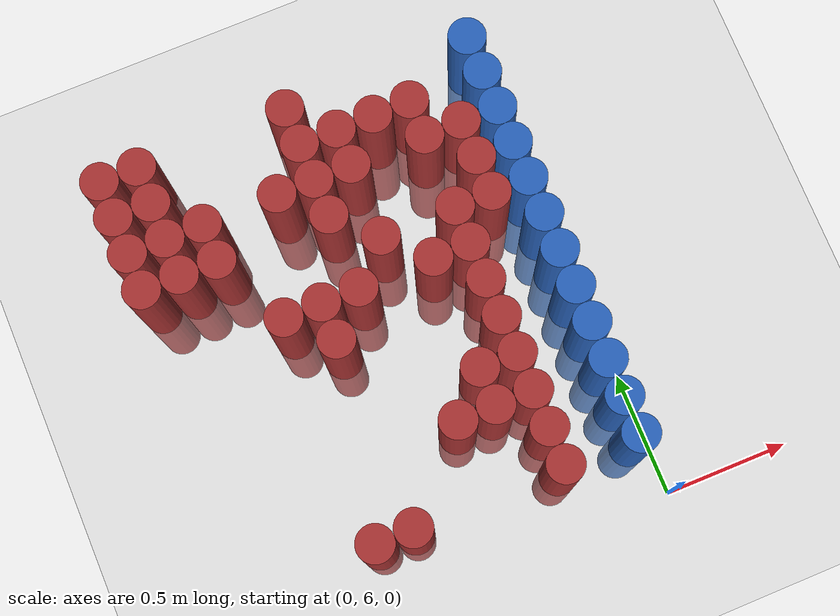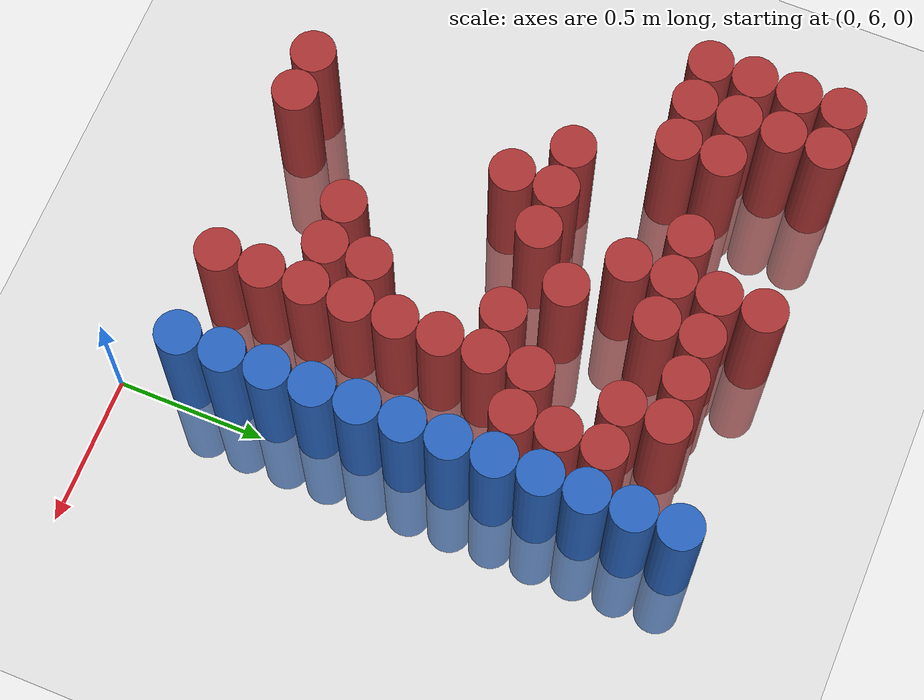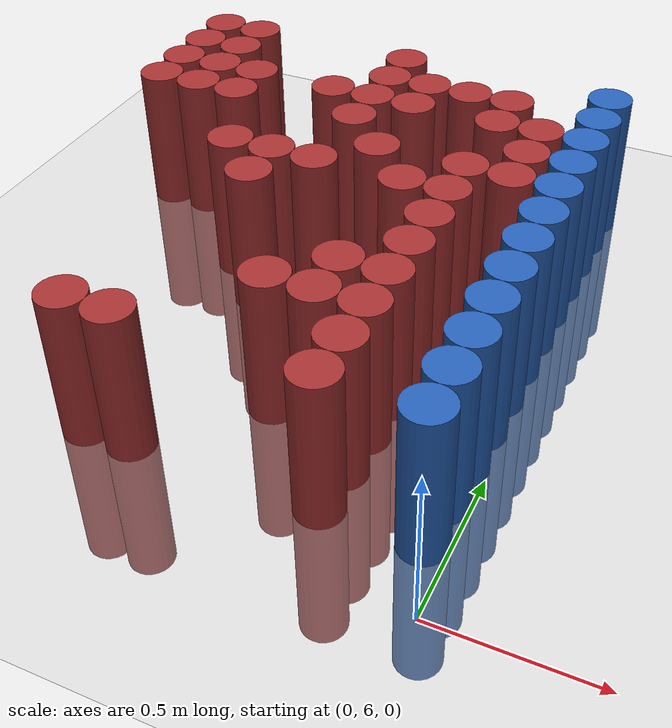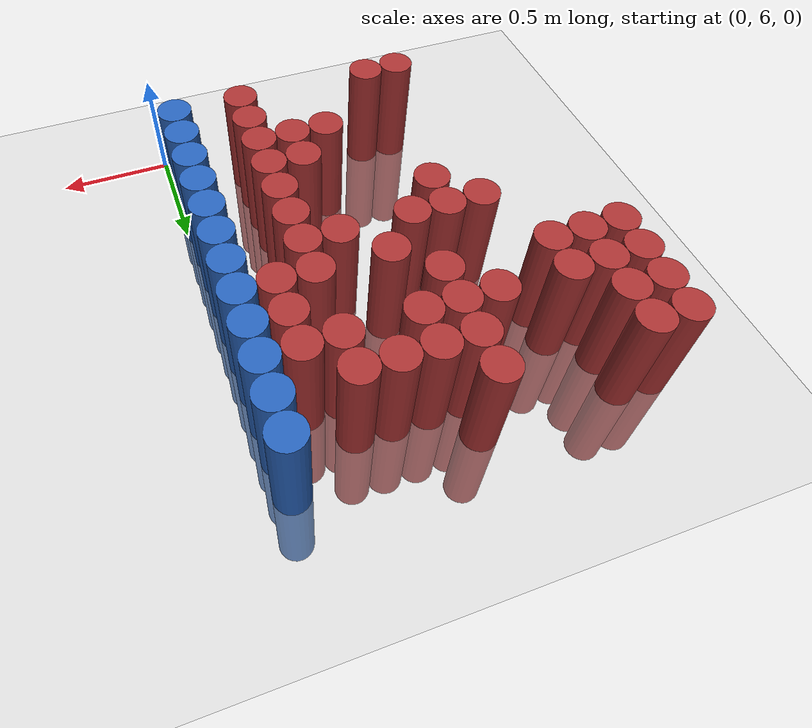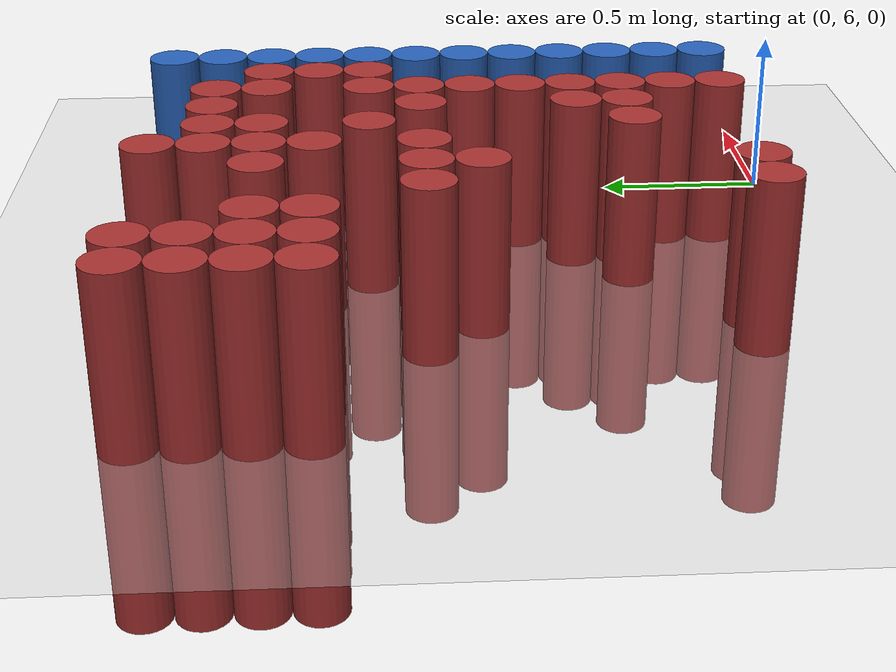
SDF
<sdf version="1.6">
 <world name="default">
  <model name="ground_plane">
   <static>1</static>
   <link name="link">
    <collision name="collision">
     <geometry><plane><normal>0 0 1</normal><size>100 100</size></plane></geometry>
     <surface><friction><ode><mu>100</mu><mu2>50</mu2></ode></friction></surface>
    </collision>
    <visual name="visual">
     <cast_shadows>0</cast_shadows>
     <geometry><plane><normal>0 0 1</normal><size>100 100</size></plane></geometry>
     <material>
      <script><uri>file://media/materials/scripts/gazebo.material</uri><name>Gazebo/Grey</name></script>
     </material>
    </visual>
   </link>
  </model>
  <model name="unit_cylinder_251">
   <static>1</static>
   <pose>-1.575000 7.425000 0.000000 0.000000 0.000000 0.000000</pose>
   <link name="link">
    <inertial>
     <mass>1</mass>
     <inertia><ixx>0.145833</ixx><ixy>0</ixy><ixz>0</ixz><iyy>0.145833</iyy><iyz>0</iyz><izz>0.125</izz></inertia>
    </inertial>
    <collision name="collision">
     <geometry><cylinder><radius>0.075000</radius><length>1</length></cylinder></geometry>
    </collision>
    <visual name="visual">
     <geometry><cylinder><radius>0.075000</radius><length>1</length></cylinder></geometry>
     <material>
      <ambient>0.648000 0.192000 0.192000 1</ambient>
      <diffuse>0.648000 0.192000 0.192000 1</diffuse>
     </material>
     <material>
      <script><name>Gazebo/Grey</name><uri>file://media/materials/scripts/gazebo.material</uri></script>
     </material>
    </visual>
   </link>
  </model>
  <model name="unit_cylinder_252">
   <static>1</static>
   <pose>-1.575000 7.575000 0.000000 0.000000 0.000000 0.000000</pose>
   <link name="link">
    <inertial>
     <mass>1</mass>
     <inertia><ixx>0.145833</ixx><ixy>0</ixy><ixz>0</ixz><iyy>0.145833</iyy><iyz>0</iyz><izz>0.125</izz></inertia>
    </inertial>
    <collision name="collision">
     <geometry><cylinder><radius>0.075000</radius><length>1</length></cylinder></geometry>
    </collision>
    <visual name="visual">
     <geometry><cylinder><radius>0.075000</radius><length>1</length></cylinder></geometry>
     <material>
      <ambient>0.648000 0.192000 0.192000 1</ambient>
      <diffuse>0.648000 0.192000 0.192000 1</diffuse>
     </material>
     <material>
      <script><name>Gazebo/Grey</name><uri>file://media/materials/scripts/gazebo.material</uri></script>
     </material>
    </visual>
   </link>
  </model>
  <model name="unit_cylinder_253">
   <static>1</static>
   <pose>-1.575000 7.725000 0.000000 0.000000 0.000000 0.000000</pose>
   <link name="link">
    <inertial>
     <mass>1</mass>
     <inertia><ixx>0.145833</ixx><ixy>0</ixy><ixz>0</ixz><iyy>0.145833</iyy><iyz>0</iyz><izz>0.125</izz></inertia>
    </inertial>
    <collision name="collision">
     <geometry><cylinder><radius>0.075000</radius><length>1</length></cylinder></geometry>
    </collision>
    <visual name="visual">
     <geometry><cylinder><radius>0.075000</radius><length>1</length></cylinder></geometry>
     <material>
      <ambient>0.648000 0.192000 0.192000 1</ambient>
      <diffuse>0.648000 0.192000 0.192000 1</diffuse>
     </material>
     <material>
      <script><name>Gazebo/Grey</name><uri>file://media/materials/scripts/gazebo.material</uri></script>
     </material>
    </visual>
   </link>
  </model>
  <model name="unit_cylinder_254">
   <static>1</static>
   <pose>-1.575000 7.875000 0.000000 0.000000 0.000000 0.000000</pose>
   <link name="link">
    <inertial>
     <mass>1</mass>
     <inertia><ixx>0.145833</ixx><ixy>0</ixy><ixz>0</ixz><iyy>0.145833</iyy><iyz>0</iyz><izz>0.125</izz></inertia>
    </inertial>
    <collision name="collision">
     <geometry><cylinder><radius>0.075000</radius><length>1</length></cylinder></geometry>
    </collision>
    <visual name="visual">
     <geometry><cylinder><radius>0.075000</radius><length>1</length></cylinder></geometry>
     <material>
      <ambient>0.648000 0.192000 0.192000 1</ambient>
      <diffuse>0.648000 0.192000 0.192000 1</diffuse>
     </material>
     <material>
      <script><name>Gazebo/Grey</name><uri>file://media/materials/scripts/gazebo.material</uri></script>
     </material>
    </visual>
   </link>
  </model>
  <model name="unit_cylinder_260">
   <static>1</static>
   <pose>-1.425000 7.425000 0.000000 0.000000 0.000000 0.000000</pose>
   <link name="link">
    <inertial>
     <mass>1</mass>
     <inertia><ixx>0.145833</ixx><ixy>0</ixy><ixz>0</ixz><iyy>0.145833</iyy><iyz>0</iyz><izz>0.125</izz></inertia>
    </inertial>
    <collision name="collision">
     <geometry><cylinder><radius>0.075000</radius><length>1</length></cylinder></geometry>
    </collision>
    <visual name="visual">
     <geometry><cylinder><radius>0.075000</radius><length>1</length></cylinder></geometry>
     <material>
      <ambient>0.648000 0.192000 0.192000 1</ambient>
      <diffuse>0.648000 0.192000 0.192000 1</diffuse>
     </material>
     <material>
      <script><name>Gazebo/Grey</name><uri>file://media/materials/scripts/gazebo.material</uri></script>
     </material>
    </visual>
   </link>
  </model>
  <model name="unit_cylinder_261">
   <static>1</static>
   <pose>-1.425000 7.575000 0.000000 0.000000 0.000000 0.000000</pose>
   <link name="link">
    <inertial>
     <mass>1</mass>
     <inertia><ixx>0.145833</ixx><ixy>0</ixy><ixz>0</ixz><iyy>0.145833</iyy><iyz>0</iyz><izz>0.125</izz></inertia>
    </inertial>
    <collision name="collision">
     <geometry><cylinder><radius>0.075000</radius><length>1</length></cylinder></geometry>
    </collision>
    <visual name="visual">
     <geometry><cylinder><radius>0.075000</radius><length>1</length></cylinder></geometry>
     <material>
      <ambient>0.648000 0.192000 0.192000 1</ambient>
      <diffuse>0.648000 0.192000 0.192000 1</diffuse>
     </material>
     <material>
      <script><name>Gazebo/Grey</name><uri>file://media/materials/scripts/gazebo.material</uri></script>
     </material>
    </visual>
   </link>
  </model>
  <model name="unit_cylinder_262">
   <static>1</static>
   <pose>-1.425000 7.725000 0.000000 0.000000 0.000000 0.000000</pose>
   <link name="link">
    <inertial>
     <mass>1</mass>
     <inertia><ixx>0.145833</ixx><ixy>0</ixy><ixz>0</ixz><iyy>0.145833</iyy><iyz>0</iyz><izz>0.125</izz></inertia>
    </inertial>
    <collision name="collision">
     <geometry><cylinder><radius>0.075000</radius><length>1</length></cylinder></geometry>
    </collision>
    <visual name="visual">
     <geometry><cylinder><radius>0.075000</radius><length>1</length></cylinder></geometry>
     <material>
      <ambient>0.648000 0.192000 0.192000 1</ambient>
      <diffuse>0.648000 0.192000 0.192000 1</diffuse>
     </material>
     <material>
      <script><name>Gazebo/Grey</name><uri>file://media/materials/scripts/gazebo.material</uri></script>
     </material>
    </visual>
   </link>
  </model>
  <model name="unit_cylinder_263">
   <static>1</static>
   <pose>-1.425000 7.875000 0.000000 0.000000 0.000000 0.000000</pose>
   <link name="link">
    <inertial>
     <mass>1</mass>
     <inertia><ixx>0.145833</ixx><ixy>0</ixy><ixz>0</ixz><iyy>0.145833</iyy><iyz>0</iyz><izz>0.125</izz></inertia>
    </inertial>
    <collision name="collision">
     <geometry><cylinder><radius>0.075000</radius><length>1</length></cylinder></geometry>
    </collision>
    <visual name="visual">
     <geometry><cylinder><radius>0.075000</radius><length>1</length></cylinder></geometry>
     <material>
      <ambient>0.648000 0.192000 0.192000 1</ambient>
      <diffuse>0.648000 0.192000 0.192000 1</diffuse>
     </material>
     <material>
      <script><name>Gazebo/Grey</name><uri>file://media/materials/scripts/gazebo.material</uri></script>
     </material>
    </visual>
   </link>
  </model>
  <model name="unit_cylinder_271">
   <static>1</static>
   <pose>-1.275000 7.425000 0.000000 0.000000 0.000000 0.000000</pose>
   <link name="link">
    <inertial>
     <mass>1</mass>
     <inertia><ixx>0.145833</ixx><ixy>0</ixy><ixz>0</ixz><iyy>0.145833</iyy><iyz>0</iyz><izz>0.125</izz></inertia>
    </inertial>
    <collision name="collision">
     <geometry><cylinder><radius>0.075000</radius><length>1</length></cylinder></geometry>
    </collision>
    <visual name="visual">
     <geometry><cylinder><radius>0.075000</radius><length>1</length></cylinder></geometry>
     <material>
      <ambient>0.648000 0.192000 0.192000 1</ambient>
      <diffuse>0.648000 0.192000 0.192000 1</diffuse>
     </material>
     <material>
      <script><name>Gazebo/Grey</name><uri>file://media/materials/scripts/gazebo.material</uri></script>
     </material>
    </visual>
   </link>
  </model>
  <model name="unit_cylinder_272">
   <static>1</static>
   <pose>-1.275000 7.575000 0.000000 0.000000 0.000000 0.000000</pose>
   <link name="link">
    <inertial>
     <mass>1</mass>
     <inertia><ixx>0.145833</ixx><ixy>0</ixy><ixz>0</ixz><iyy>0.145833</iyy><iyz>0</iyz><izz>0.125</izz></inertia>
    </inertial>
    <collision name="collision">
     <geometry><cylinder><radius>0.075000</radius><length>1</length></cylinder></geometry>
    </collision>
    <visual name="visual">
     <geometry><cylinder><radius>0.075000</radius><length>1</length></cylinder></geometry>
     <material>
      <ambient>0.648000 0.192000 0.192000 1</ambient>
      <diffuse>0.648000 0.192000 0.192000 1</diffuse>
     </material>
     <material>
      <script><name>Gazebo/Grey</name><uri>file://media/materials/scripts/gazebo.material</uri></script>
     </material>
    </visual>
   </link>
  </model>
  <model name="unit_cylinder_280">
   <static>1</static>
   <pose>-1.125000 6.225000 0.000000 0.000000 0.000000 0.000000</pose>
   <link name="link">
    <inertial>
     <mass>1</mass>
     <inertia><ixx>0.145833</ixx><ixy>0</ixy><ixz>0</ixz><iyy>0.145833</iyy><iyz>0</iyz><izz>0.125</izz></inertia>
    </inertial>
    <collision name="collision">
     <geometry><cylinder><radius>0.075000</radius><length>1</length></cylinder></geometry>
    </collision>
    <visual name="visual">
     <geometry><cylinder><radius>0.075000</radius><length>1</length></cylinder></geometry>
     <material>
      <ambient>0.648000 0.192000 0.192000 1</ambient>
      <diffuse>0.648000 0.192000 0.192000 1</diffuse>
     </material>
     <material>
      <script><name>Gazebo/Grey</name><uri>file://media/materials/scripts/gazebo.material</uri></script>
     </material>
    </visual>
   </link>
  </model>
  <model name="unit_cylinder_281">
   <static>1</static>
   <pose>-1.125000 7.125000 0.000000 0.000000 0.000000 0.000000</pose>
   <link name="link">
    <inertial>
     <mass>1</mass>
     <inertia><ixx>0.145833</ixx><ixy>0</ixy><ixz>0</ixz><iyy>0.145833</iyy><iyz>0</iyz><izz>0.125</izz></inertia>
    </inertial>
    <collision name="collision">
     <geometry><cylinder><radius>0.075000</radius><length>1</length></cylinder></geometry>
    </collision>
    <visual name="visual">
     <geometry><cylinder><radius>0.075000</radius><length>1</length></cylinder></geometry>
     <material>
      <ambient>0.648000 0.192000 0.192000 1</ambient>
      <diffuse>0.648000 0.192000 0.192000 1</diffuse>
     </material>
     <material>
      <script><name>Gazebo/Grey</name><uri>file://media/materials/scripts/gazebo.material</uri></script>
     </material>
    </visual>
   </link>
  </model>
  <model name="unit_cylinder_286">
   <static>1</static>
   <pose>-0.975000 6.225000 0.000000 0.000000 0.000000 0.000000</pose>
   <link name="link">
    <inertial>
     <mass>1</mass>
     <inertia><ixx>0.145833</ixx><ixy>0</ixy><ixz>0</ixz><iyy>0.145833</iyy><iyz>0</iyz><izz>0.125</izz></inertia>
    </inertial>
    <collision name="collision">
     <geometry><cylinder><radius>0.075000</radius><length>1</length></cylinder></geometry>
    </collision>
    <visual name="visual">
     <geometry><cylinder><radius>0.075000</radius><length>1</length></cylinder></geometry>
     <material>
      <ambient>0.648000 0.192000 0.192000 1</ambient>
      <diffuse>0.648000 0.192000 0.192000 1</diffuse>
     </material>
     <material>
      <script><name>Gazebo/Grey</name><uri>file://media/materials/scripts/gazebo.material</uri></script>
     </material>
    </visual>
   </link>
  </model>
  <model name="unit_cylinder_287">
   <static>1</static>
   <pose>-0.975000 6.975000 0.000000 0.000000 0.000000 0.000000</pose>
   <link name="link">
    <inertial>
     <mass>1</mass>
     <inertia><ixx>0.145833</ixx><ixy>0</ixy><ixz>0</ixz><iyy>0.145833</iyy><iyz>0</iyz><izz>0.125</izz></inertia>
    </inertial>
    <collision name="collision">
     <geometry><cylinder><radius>0.075000</radius><length>1</length></cylinder></geometry>
    </collision>
    <visual name="visual">
     <geometry><cylinder><radius>0.075000</radius><length>1</length></cylinder></geometry>
     <material>
      <ambient>0.648000 0.192000 0.192000 1</ambient>
      <diffuse>0.648000 0.192000 0.192000 1</diffuse>
     </material>
     <material>
      <script><name>Gazebo/Grey</name><uri>file://media/materials/scripts/gazebo.material</uri></script>
     </material>
    </visual>
   </link>
  </model>
  <model name="unit_cylinder_288">
   <static>1</static>
   <pose>-0.975000 7.125000 0.000000 0.000000 0.000000 0.000000</pose>
   <link name="link">
    <inertial>
     <mass>1</mass>
     <inertia><ixx>0.145833</ixx><ixy>0</ixy><ixz>0</ixz><iyy>0.145833</iyy><iyz>0</iyz><izz>0.125</izz></inertia>
    </inertial>
    <collision name="collision">
     <geometry><cylinder><radius>0.075000</radius><length>1</length></cylinder></geometry>
    </collision>
    <visual name="visual">
     <geometry><cylinder><radius>0.075000</radius><length>1</length></cylinder></geometry>
     <material>
      <ambient>0.648000 0.192000 0.192000 1</ambient>
      <diffuse>0.648000 0.192000 0.192000 1</diffuse>
     </material>
     <material>
      <script><name>Gazebo/Grey</name><uri>file://media/materials/scripts/gazebo.material</uri></script>
     </material>
    </visual>
   </link>
  </model>
  <model name="unit_cylinder_289">
   <static>1</static>
   <pose>-0.975000 7.575000 0.000000 0.000000 0.000000 0.000000</pose>
   <link name="link">
    <inertial>
     <mass>1</mass>
     <inertia><ixx>0.145833</ixx><ixy>0</ixy><ixz>0</ixz><iyy>0.145833</iyy><iyz>0</iyz><izz>0.125</izz></inertia>
    </inertial>
    <collision name="collision">
     <geometry><cylinder><radius>0.075000</radius><length>1</length></cylinder></geometry>
    </collision>
    <visual name="visual">
     <geometry><cylinder><radius>0.075000</radius><length>1</length></cylinder></geometry>
     <material>
      <ambient>0.648000 0.192000 0.192000 1</ambient>
      <diffuse>0.648000 0.192000 0.192000 1</diffuse>
     </material>
     <material>
      <script><name>Gazebo/Grey</name><uri>file://media/materials/scripts/gazebo.material</uri></script>
     </material>
    </visual>
   </link>
  </model>
  <model name="unit_cylinder_294">
   <static>1</static>
   <pose>-0.825000 7.125000 0.000000 0.000000 0.000000 0.000000</pose>
   <link name="link">
    <inertial>
     <mass>1</mass>
     <inertia><ixx>0.145833</ixx><ixy>0</ixy><ixz>0</ixz><iyy>0.145833</iyy><iyz>0</iyz><izz>0.125</izz></inertia>
    </inertial>
    <collision name="collision">
     <geometry><cylinder><radius>0.075000</radius><length>1</length></cylinder></geometry>
    </collision>
    <visual name="visual">
     <geometry><cylinder><radius>0.075000</radius><length>1</length></cylinder></geometry>
     <material>
      <ambient>0.648000 0.192000 0.192000 1</ambient>
      <diffuse>0.648000 0.192000 0.192000 1</diffuse>
     </material>
     <material>
      <script><name>Gazebo/Grey</name><uri>file://media/materials/scripts/gazebo.material</uri></script>
     </material>
    </visual>
   </link>
  </model>
  <model name="unit_cylinder_295">
   <static>1</static>
   <pose>-0.825000 7.425000 0.000000 0.000000 0.000000 0.000000</pose>
   <link name="link">
    <inertial>
     <mass>1</mass>
     <inertia><ixx>0.145833</ixx><ixy>0</ixy><ixz>0</ixz><iyy>0.145833</iyy><iyz>0</iyz><izz>0.125</izz></inertia>
    </inertial>
    <collision name="collision">
     <geometry><cylinder><radius>0.075000</radius><length>1</length></cylinder></geometry>
    </collision>
    <visual name="visual">
     <geometry><cylinder><radius>0.075000</radius><length>1</length></cylinder></geometry>
     <material>
      <ambient>0.648000 0.192000 0.192000 1</ambient>
      <diffuse>0.648000 0.192000 0.192000 1</diffuse>
     </material>
     <material>
      <script><name>Gazebo/Grey</name><uri>file://media/materials/scripts/gazebo.material</uri></script>
     </material>
    </visual>
   </link>
  </model>
  <model name="unit_cylinder_296">
   <static>1</static>
   <pose>-0.825000 7.575000 0.000000 0.000000 0.000000 0.000000</pose>
   <link name="link">
    <inertial>
     <mass>1</mass>
     <inertia><ixx>0.145833</ixx><ixy>0</ixy><ixz>0</ixz><iyy>0.145833</iyy><iyz>0</iyz><izz>0.125</izz></inertia>
    </inertial>
    <collision name="collision">
     <geometry><cylinder><radius>0.075000</radius><length>1</length></cylinder></geometry>
    </collision>
    <visual name="visual">
     <geometry><cylinder><radius>0.075000</radius><length>1</length></cylinder></geometry>
     <material>
      <ambient>0.648000 0.192000 0.192000 1</ambient>
      <diffuse>0.648000 0.192000 0.192000 1</diffuse>
     </material>
     <material>
      <script><name>Gazebo/Grey</name><uri>file://media/materials/scripts/gazebo.material</uri></script>
     </material>
    </visual>
   </link>
  </model>
  <model name="unit_cylinder_297">
   <static>1</static>
   <pose>-0.825000 7.725000 0.000000 0.000000 0.000000 0.000000</pose>
   <link name="link">
    <inertial>
     <mass>1</mass>
     <inertia><ixx>0.145833</ixx><ixy>0</ixy><ixz>0</ixz><iyy>0.145833</iyy><iyz>0</iyz><izz>0.125</izz></inertia>
    </inertial>
    <collision name="collision">
     <geometry><cylinder><radius>0.075000</radius><length>1</length></cylinder></geometry>
    </collision>
    <visual name="visual">
     <geometry><cylinder><radius>0.075000</radius><length>1</length></cylinder></geometry>
     <material>
      <ambient>0.648000 0.192000 0.192000 1</ambient>
      <diffuse>0.648000 0.192000 0.192000 1</diffuse>
     </material>
     <material>
      <script><name>Gazebo/Grey</name><uri>file://media/materials/scripts/gazebo.material</uri></script>
     </material>
    </visual>
   </link>
  </model>
  <model name="unit_cylinder_298">
   <static>1</static>
   <pose>-0.825000 7.875000 0.000000 0.000000 0.000000 0.000000</pose>
   <link name="link">
    <inertial>
     <mass>1</mass>
     <inertia><ixx>0.145833</ixx><ixy>0</ixy><ixz>0</ixz><iyy>0.145833</iyy><iyz>0</iyz><izz>0.125</izz></inertia>
    </inertial>
    <collision name="collision">
     <geometry><cylinder><radius>0.075000</radius><length>1</length></cylinder></geometry>
    </collision>
    <visual name="visual">
     <geometry><cylinder><radius>0.075000</radius><length>1</length></cylinder></geometry>
     <material>
      <ambient>0.648000 0.192000 0.192000 1</ambient>
      <diffuse>0.648000 0.192000 0.192000 1</diffuse>
     </material>
     <material>
      <script><name>Gazebo/Grey</name><uri>file://media/materials/scripts/gazebo.material</uri></script>
     </material>
    </visual>
   </link>
  </model>
  <model name="unit_cylinder_303">
   <static>1</static>
   <pose>-0.675000 6.525000 0.000000 0.000000 0.000000 0.000000</pose>
   <link name="link">
    <inertial>
     <mass>1</mass>
     <inertia><ixx>0.145833</ixx><ixy>0</ixy><ixz>0</ixz><iyy>0.145833</iyy><iyz>0</iyz><izz>0.125</izz></inertia>
    </inertial>
    <collision name="collision">
     <geometry><cylinder><radius>0.075000</radius><length>1</length></cylinder></geometry>
    </collision>
    <visual name="visual">
     <geometry><cylinder><radius>0.075000</radius><length>1</length></cylinder></geometry>
     <material>
      <ambient>0.648000 0.192000 0.192000 1</ambient>
      <diffuse>0.648000 0.192000 0.192000 1</diffuse>
     </material>
     <material>
      <script><name>Gazebo/Grey</name><uri>file://media/materials/scripts/gazebo.material</uri></script>
     </material>
    </visual>
   </link>
  </model>
  <model name="unit_cylinder_304">
   <static>1</static>
   <pose>-0.675000 7.275000 0.000000 0.000000 0.000000 0.000000</pose>
   <link name="link">
    <inertial>
     <mass>1</mass>
     <inertia><ixx>0.145833</ixx><ixy>0</ixy><ixz>0</ixz><iyy>0.145833</iyy><iyz>0</iyz><izz>0.125</izz></inertia>
    </inertial>
    <collision name="collision">
     <geometry><cylinder><radius>0.075000</radius><length>1</length></cylinder></geometry>
    </collision>
    <visual name="visual">
     <geometry><cylinder><radius>0.075000</radius><length>1</length></cylinder></geometry>
     <material>
      <ambient>0.648000 0.192000 0.192000 1</ambient>
      <diffuse>0.648000 0.192000 0.192000 1</diffuse>
     </material>
     <material>
      <script><name>Gazebo/Grey</name><uri>file://media/materials/scripts/gazebo.material</uri></script>
     </material>
    </visual>
   </link>
  </model>
  <model name="unit_cylinder_305">
   <static>1</static>
   <pose>-0.675000 7.575000 0.000000 0.000000 0.000000 0.000000</pose>
   <link name="link">
    <inertial>
     <mass>1</mass>
     <inertia><ixx>0.145833</ixx><ixy>0</ixy><ixz>0</ixz><iyy>0.145833</iyy><iyz>0</iyz><izz>0.125</izz></inertia>
    </inertial>
    <collision name="collision">
     <geometry><cylinder><radius>0.075000</radius><length>1</length></cylinder></geometry>
    </collision>
    <visual name="visual">
     <geometry><cylinder><radius>0.075000</radius><length>1</length></cylinder></geometry>
     <material>
      <ambient>0.648000 0.192000 0.192000 1</ambient>
      <diffuse>0.648000 0.192000 0.192000 1</diffuse>
     </material>
     <material>
      <script><name>Gazebo/Grey</name><uri>file://media/materials/scripts/gazebo.material</uri></script>
     </material>
    </visual>
   </link>
  </model>
  <model name="unit_cylinder_306">
   <static>1</static>
   <pose>-0.675000 7.725000 0.000000 0.000000 0.000000 0.000000</pose>
   <link name="link">
    <inertial>
     <mass>1</mass>
     <inertia><ixx>0.145833</ixx><ixy>0</ixy><ixz>0</ixz><iyy>0.145833</iyy><iyz>0</iyz><izz>0.125</izz></inertia>
    </inertial>
    <collision name="collision">
     <geometry><cylinder><radius>0.075000</radius><length>1</length></cylinder></geometry>
    </collision>
    <visual name="visual">
     <geometry><cylinder><radius>0.075000</radius><length>1</length></cylinder></geometry>
     <material>
      <ambient>0.648000 0.192000 0.192000 1</ambient>
      <diffuse>0.648000 0.192000 0.192000 1</diffuse>
     </material>
     <material>
      <script><name>Gazebo/Grey</name><uri>file://media/materials/scripts/gazebo.material</uri></script>
     </material>
    </visual>
   </link>
  </model>
  <model name="unit_cylinder_310">
   <static>1</static>
   <pose>-0.525000 6.525000 0.000000 0.000000 0.000000 0.000000</pose>
   <link name="link">
    <inertial>
     <mass>1</mass>
     <inertia><ixx>0.145833</ixx><ixy>0</ixy><ixz>0</ixz><iyy>0.145833</iyy><iyz>0</iyz><izz>0.125</izz></inertia>
    </inertial>
    <collision name="collision">
     <geometry><cylinder><radius>0.075000</radius><length>1</length></cylinder></geometry>
    </collision>
    <visual name="visual">
     <geometry><cylinder><radius>0.075000</radius><length>1</length></cylinder></geometry>
     <material>
      <ambient>0.648000 0.192000 0.192000 1</ambient>
      <diffuse>0.648000 0.192000 0.192000 1</diffuse>
     </material>
     <material>
      <script><name>Gazebo/Grey</name><uri>file://media/materials/scripts/gazebo.material</uri></script>
     </material>
    </visual>
   </link>
  </model>
  <model name="unit_cylinder_311">
   <static>1</static>
   <pose>-0.525000 6.675000 0.000000 0.000000 0.000000 0.000000</pose>
   <link name="link">
    <inertial>
     <mass>1</mass>
     <inertia><ixx>0.145833</ixx><ixy>0</ixy><ixz>0</ixz><iyy>0.145833</iyy><iyz>0</iyz><izz>0.125</izz></inertia>
    </inertial>
    <collision name="collision">
     <geometry><cylinder><radius>0.075000</radius><length>1</length></cylinder></geometry>
    </collision>
    <visual name="visual">
     <geometry><cylinder><radius>0.075000</radius><length>1</length></cylinder></geometry>
     <material>
      <ambient>0.648000 0.192000 0.192000 1</ambient>
      <diffuse>0.648000 0.192000 0.192000 1</diffuse>
     </material>
     <material>
      <script><name>Gazebo/Grey</name><uri>file://media/materials/scripts/gazebo.material</uri></script>
     </material>
    </visual>
   </link>
  </model>
  <model name="unit_cylinder_312">
   <static>1</static>
   <pose>-0.525000 7.125000 0.000000 0.000000 0.000000 0.000000</pose>
   <link name="link">
    <inertial>
     <mass>1</mass>
     <inertia><ixx>0.145833</ixx><ixy>0</ixy><ixz>0</ixz><iyy>0.145833</iyy><iyz>0</iyz><izz>0.125</izz></inertia>
    </inertial>
    <collision name="collision">
     <geometry><cylinder><radius>0.075000</radius><length>1</length></cylinder></geometry>
    </collision>
    <visual name="visual">
     <geometry><cylinder><radius>0.075000</radius><length>1</length></cylinder></geometry>
     <material>
      <ambient>0.648000 0.192000 0.192000 1</ambient>
      <diffuse>0.648000 0.192000 0.192000 1</diffuse>
     </material>
     <material>
      <script><name>Gazebo/Grey</name><uri>file://media/materials/scripts/gazebo.material</uri></script>
     </material>
    </visual>
   </link>
  </model>
  <model name="unit_cylinder_313">
   <static>1</static>
   <pose>-0.525000 7.725000 0.000000 0.000000 0.000000 0.000000</pose>
   <link name="link">
    <inertial>
     <mass>1</mass>
     <inertia><ixx>0.145833</ixx><ixy>0</ixy><ixz>0</ixz><iyy>0.145833</iyy><iyz>0</iyz><izz>0.125</izz></inertia>
    </inertial>
    <collision name="collision">
     <geometry><cylinder><radius>0.075000</radius><length>1</length></cylinder></geometry>
    </collision>
    <visual name="visual">
     <geometry><cylinder><radius>0.075000</radius><length>1</length></cylinder></geometry>
     <material>
      <ambient>0.648000 0.192000 0.192000 1</ambient>
      <diffuse>0.648000 0.192000 0.192000 1</diffuse>
     </material>
     <material>
      <script><name>Gazebo/Grey</name><uri>file://media/materials/scripts/gazebo.material</uri></script>
     </material>
    </visual>
   </link>
  </model>
  <model name="unit_cylinder_320">
   <static>1</static>
   <pose>-0.375000 6.225000 0.000000 0.000000 0.000000 0.000000</pose>
   <link name="link">
    <inertial>
     <mass>1</mass>
     <inertia><ixx>0.145833</ixx><ixy>0</ixy><ixz>0</ixz><iyy>0.145833</iyy><iyz>0</iyz><izz>0.125</izz></inertia>
    </inertial>
    <collision name="collision">
     <geometry><cylinder><radius>0.075000</radius><length>1</length></cylinder></geometry>
    </collision>
    <visual name="visual">
     <geometry><cylinder><radius>0.075000</radius><length>1</length></cylinder></geometry>
     <material>
      <ambient>0.648000 0.192000 0.192000 1</ambient>
      <diffuse>0.648000 0.192000 0.192000 1</diffuse>
     </material>
     <material>
      <script><name>Gazebo/Grey</name><uri>file://media/materials/scripts/gazebo.material</uri></script>
     </material>
    </visual>
   </link>
  </model>
  <model name="unit_cylinder_321">
   <static>1</static>
   <pose>-0.375000 6.375000 0.000000 0.000000 0.000000 0.000000</pose>
   <link name="link">
    <inertial>
     <mass>1</mass>
     <inertia><ixx>0.145833</ixx><ixy>0</ixy><ixz>0</ixz><iyy>0.145833</iyy><iyz>0</iyz><izz>0.125</izz></inertia>
    </inertial>
    <collision name="collision">
     <geometry><cylinder><radius>0.075000</radius><length>1</length></cylinder></geometry>
    </collision>
    <visual name="visual">
     <geometry><cylinder><radius>0.075000</radius><length>1</length></cylinder></geometry>
     <material>
      <ambient>0.648000 0.192000 0.192000 1</ambient>
      <diffuse>0.648000 0.192000 0.192000 1</diffuse>
     </material>
     <material>
      <script><name>Gazebo/Grey</name><uri>file://media/materials/scripts/gazebo.material</uri></script>
     </material>
    </visual>
   </link>
  </model>
  <model name="unit_cylinder_322">
   <static>1</static>
   <pose>-0.375000 6.525000 0.000000 0.000000 0.000000 0.000000</pose>
   <link name="link">
    <inertial>
     <mass>1</mass>
     <inertia><ixx>0.145833</ixx><ixy>0</ixy><ixz>0</ixz><iyy>0.145833</iyy><iyz>0</iyz><izz>0.125</izz></inertia>
    </inertial>
    <collision name="collision">
     <geometry><cylinder><radius>0.075000</radius><length>1</length></cylinder></geometry>
    </collision>
    <visual name="visual">
     <geometry><cylinder><radius>0.075000</radius><length>1</length></cylinder></geometry>
     <material>
      <ambient>0.648000 0.192000 0.192000 1</ambient>
      <diffuse>0.648000 0.192000 0.192000 1</diffuse>
     </material>
     <material>
      <script><name>Gazebo/Grey</name><uri>file://media/materials/scripts/gazebo.material</uri></script>
     </material>
    </visual>
   </link>
  </model>
  <model name="unit_cylinder_323">
   <static>1</static>
   <pose>-0.375000 6.675000 0.000000 0.000000 0.000000 0.000000</pose>
   <link name="link">
    <inertial>
     <mass>1</mass>
     <inertia><ixx>0.145833</ixx><ixy>0</ixy><ixz>0</ixz><iyy>0.145833</iyy><iyz>0</iyz><izz>0.125</izz></inertia>
    </inertial>
    <collision name="collision">
     <geometry><cylinder><radius>0.075000</radius><length>1</length></cylinder></geometry>
    </collision>
    <visual name="visual">
     <geometry><cylinder><radius>0.075000</radius><length>1</length></cylinder></geometry>
     <material>
      <ambient>0.648000 0.192000 0.192000 1</ambient>
      <diffuse>0.648000 0.192000 0.192000 1</diffuse>
     </material>
     <material>
      <script><name>Gazebo/Grey</name><uri>file://media/materials/scripts/gazebo.material</uri></script>
     </material>
    </visual>
   </link>
  </model>
  <model name="unit_cylinder_324">
   <static>1</static>
   <pose>-0.375000 6.825000 0.000000 0.000000 0.000000 0.000000</pose>
   <link name="link">
    <inertial>
     <mass>1</mass>
     <inertia><ixx>0.145833</ixx><ixy>0</ixy><ixz>0</ixz><iyy>0.145833</iyy><iyz>0</iyz><izz>0.125</izz></inertia>
    </inertial>
    <collision name="collision">
     <geometry><cylinder><radius>0.075000</radius><length>1</length></cylinder></geometry>
    </collision>
    <visual name="visual">
     <geometry><cylinder><radius>0.075000</radius><length>1</length></cylinder></geometry>
     <material>
      <ambient>0.648000 0.192000 0.192000 1</ambient>
      <diffuse>0.648000 0.192000 0.192000 1</diffuse>
     </material>
     <material>
      <script><name>Gazebo/Grey</name><uri>file://media/materials/scripts/gazebo.material</uri></script>
     </material>
    </visual>
   </link>
  </model>
  <model name="unit_cylinder_325">
   <static>1</static>
   <pose>-0.375000 6.975000 0.000000 0.000000 0.000000 0.000000</pose>
   <link name="link">
    <inertial>
     <mass>1</mass>
     <inertia><ixx>0.145833</ixx><ixy>0</ixy><ixz>0</ixz><iyy>0.145833</iyy><iyz>0</iyz><izz>0.125</izz></inertia>
    </inertial>
    <collision name="collision">
     <geometry><cylinder><radius>0.075000</radius><length>1</length></cylinder></geometry>
    </collision>
    <visual name="visual">
     <geometry><cylinder><radius>0.075000</radius><length>1</length></cylinder></geometry>
     <material>
      <ambient>0.648000 0.192000 0.192000 1</ambient>
      <diffuse>0.648000 0.192000 0.192000 1</diffuse>
     </material>
     <material>
      <script><name>Gazebo/Grey</name><uri>file://media/materials/scripts/gazebo.material</uri></script>
     </material>
    </visual>
   </link>
  </model>
  <model name="unit_cylinder_326">
   <static>1</static>
   <pose>-0.375000 7.125000 0.000000 0.000000 0.000000 0.000000</pose>
   <link name="link">
    <inertial>
     <mass>1</mass>
     <inertia><ixx>0.145833</ixx><ixy>0</ixy><ixz>0</ixz><iyy>0.145833</iyy><iyz>0</iyz><izz>0.125</izz></inertia>
    </inertial>
    <collision name="collision">
     <geometry><cylinder><radius>0.075000</radius><length>1</length></cylinder></geometry>
    </collision>
    <visual name="visual">
     <geometry><cylinder><radius>0.075000</radius><length>1</length></cylinder></geometry>
     <material>
      <ambient>0.648000 0.192000 0.192000 1</ambient>
      <diffuse>0.648000 0.192000 0.192000 1</diffuse>
     </material>
     <material>
      <script><name>Gazebo/Grey</name><uri>file://media/materials/scripts/gazebo.material</uri></script>
     </material>
    </visual>
   </link>
  </model>
  <model name="unit_cylinder_327">
   <static>1</static>
   <pose>-0.375000 7.275000 0.000000 0.000000 0.000000 0.000000</pose>
   <link name="link">
    <inertial>
     <mass>1</mass>
     <inertia><ixx>0.145833</ixx><ixy>0</ixy><ixz>0</ixz><iyy>0.145833</iyy><iyz>0</iyz><izz>0.125</izz></inertia>
    </inertial>
    <collision name="collision">
     <geometry><cylinder><radius>0.075000</radius><length>1</length></cylinder></geometry>
    </collision>
    <visual name="visual">
     <geometry><cylinder><radius>0.075000</radius><length>1</length></cylinder></geometry>
     <material>
      <ambient>0.648000 0.192000 0.192000 1</ambient>
      <diffuse>0.648000 0.192000 0.192000 1</diffuse>
     </material>
     <material>
      <script><name>Gazebo/Grey</name><uri>file://media/materials/scripts/gazebo.material</uri></script>
     </material>
    </visual>
   </link>
  </model>
  <model name="unit_cylinder_328">
   <static>1</static>
   <pose>-0.375000 7.575000 0.000000 0.000000 0.000000 0.000000</pose>
   <link name="link">
    <inertial>
     <mass>1</mass>
     <inertia><ixx>0.145833</ixx><ixy>0</ixy><ixz>0</ixz><iyy>0.145833</iyy><iyz>0</iyz><izz>0.125</izz></inertia>
    </inertial>
    <collision name="collision">
     <geometry><cylinder><radius>0.075000</radius><length>1</length></cylinder></geometry>
    </collision>
    <visual name="visual">
     <geometry><cylinder><radius>0.075000</radius><length>1</length></cylinder></geometry>
     <material>
      <ambient>0.648000 0.192000 0.192000 1</ambient>
      <diffuse>0.648000 0.192000 0.192000 1</diffuse>
     </material>
     <material>
      <script><name>Gazebo/Grey</name><uri>file://media/materials/scripts/gazebo.material</uri></script>
     </material>
    </visual>
   </link>
  </model>
  <model name="unit_cylinder_329">
   <static>1</static>
   <pose>-0.375000 7.725000 0.000000 0.000000 0.000000 0.000000</pose>
   <link name="link">
    <inertial>
     <mass>1</mass>
     <inertia><ixx>0.145833</ixx><ixy>0</ixy><ixz>0</ixz><iyy>0.145833</iyy><iyz>0</iyz><izz>0.125</izz></inertia>
    </inertial>
    <collision name="collision">
     <geometry><cylinder><radius>0.075000</radius><length>1</length></cylinder></geometry>
    </collision>
    <visual name="visual">
     <geometry><cylinder><radius>0.075000</radius><length>1</length></cylinder></geometry>
     <material>
      <ambient>0.648000 0.192000 0.192000 1</ambient>
      <diffuse>0.648000 0.192000 0.192000 1</diffuse>
     </material>
     <material>
      <script><name>Gazebo/Grey</name><uri>file://media/materials/scripts/gazebo.material</uri></script>
     </material>
    </visual>
   </link>
  </model>
  <model name="unit_cylinder_339">
   <static>1</static>
   <pose>-0.225000 7.275000 0.000000 0.000000 0.000000 0.000000</pose>
   <link name="link">
    <inertial>
     <mass>1</mass>
     <inertia><ixx>0.145833</ixx><ixy>0</ixy><ixz>0</ixz><iyy>0.145833</iyy><iyz>0</iyz><izz>0.125</izz></inertia>
    </inertial>
    <collision name="collision">
     <geometry><cylinder><radius>0.075000</radius><length>1</length></cylinder></geometry>
    </collision>
    <visual name="visual">
     <geometry><cylinder><radius>0.075000</radius><length>1</length></cylinder></geometry>
     <material>
      <ambient>0.648000 0.192000 0.192000 1</ambient>
      <diffuse>0.648000 0.192000 0.192000 1</diffuse>
     </material>
     <material>
      <script><name>Gazebo/Grey</name><uri>file://media/materials/scripts/gazebo.material</uri></script>
     </material>
    </visual>
   </link>
  </model>
  <model name="unit_cylinder_340">
   <static>1</static>
   <pose>-0.225000 7.425000 0.000000 0.000000 0.000000 0.000000</pose>
   <link name="link">
    <inertial>
     <mass>1</mass>
     <inertia><ixx>0.145833</ixx><ixy>0</ixy><ixz>0</ixz><iyy>0.145833</iyy><iyz>0</iyz><izz>0.125</izz></inertia>
    </inertial>
    <collision name="collision">
     <geometry><cylinder><radius>0.075000</radius><length>1</length></cylinder></geometry>
    </collision>
    <visual name="visual">
     <geometry><cylinder><radius>0.075000</radius><length>1</length></cylinder></geometry>
     <material>
      <ambient>0.648000 0.192000 0.192000 1</ambient>
      <diffuse>0.648000 0.192000 0.192000 1</diffuse>
     </material>
     <material>
      <script><name>Gazebo/Grey</name><uri>file://media/materials/scripts/gazebo.material</uri></script>
     </material>
    </visual>
   </link>
  </model>
  <model name="unit_cylinder_341">
   <static>1</static>
   <pose>-0.225000 7.575000 0.000000 0.000000 0.000000 0.000000</pose>
   <link name="link">
    <inertial>
     <mass>1</mass>
     <inertia><ixx>0.145833</ixx><ixy>0</ixy><ixz>0</ixz><iyy>0.145833</iyy><iyz>0</iyz><izz>0.125</izz></inertia>
    </inertial>
    <collision name="collision">
     <geometry><cylinder><radius>0.075000</radius><length>1</length></cylinder></geometry>
    </collision>
    <visual name="visual">
     <geometry><cylinder><radius>0.075000</radius><length>1</length></cylinder></geometry>
     <material>
      <ambient>0.648000 0.192000 0.192000 1</ambient>
      <diffuse>0.648000 0.192000 0.192000 1</diffuse>
     </material>
     <material>
      <script><name>Gazebo/Grey</name><uri>file://media/materials/scripts/gazebo.material</uri></script>
     </material>
    </visual>
   </link>
  </model>
  <model name="unit_cylinder_359">
   <static>1</static>
   <pose>-0.075000 6.225000 0.000000 0.000000 0.000000 0.000000</pose>
   <link name="link">
    <inertial>
     <mass>1</mass>
     <inertia><ixx>0.145833</ixx><ixy>0</ixy><ixz>0</ixz><iyy>0.145833</iyy><iyz>0</iyz><izz>0.125</izz></inertia>
    </inertial>
    <collision name="collision">
     <geometry><cylinder><radius>0.075000</radius><length>1</length></cylinder></geometry>
    </collision>
    <visual name="visual">
     <geometry><cylinder><radius>0.075000</radius><length>1</length></cylinder></geometry>
     <material>
      <ambient>0.152000 0.379000 0.720000 1</ambient>
      <diffuse>0.152000 0.379000 0.720000 1</diffuse>
     </material>
     <material>
      <script><name>Gazebo/Grey</name><uri>file://media/materials/scripts/gazebo.material</uri></script>
     </material>
    </visual>
   </link>
  </model>
  <model name="unit_cylinder_360">
   <static>1</static>
   <pose>-0.075000 6.375000 0.000000 0.000000 0.000000 0.000000</pose>
   <link name="link">
    <inertial>
     <mass>1</mass>
     <inertia><ixx>0.145833</ixx><ixy>0</ixy><ixz>0</ixz><iyy>0.145833</iyy><iyz>0</iyz><izz>0.125</izz></inertia>
    </inertial>
    <collision name="collision">
     <geometry><cylinder><radius>0.075000</radius><length>1</length></cylinder></geometry>
    </collision>
    <visual name="visual">
     <geometry><cylinder><radius>0.075000</radius><length>1</length></cylinder></geometry>
     <material>
      <ambient>0.152000 0.379000 0.720000 1</ambient>
      <diffuse>0.152000 0.379000 0.720000 1</diffuse>
     </material>
     <material>
      <script><name>Gazebo/Grey</name><uri>file://media/materials/scripts/gazebo.material</uri></script>
     </material>
    </visual>
   </link>
  </model>
  <model name="unit_cylinder_361">
   <static>1</static>
   <pose>-0.075000 6.525000 0.000000 0.000000 0.000000 0.000000</pose>
   <link name="link">
    <inertial>
     <mass>1</mass>
     <inertia><ixx>0.145833</ixx><ixy>0</ixy><ixz>0</ixz><iyy>0.145833</iyy><iyz>0</iyz><izz>0.125</izz></inertia>
    </inertial>
    <collision name="collision">
     <geometry><cylinder><radius>0.075000</radius><length>1</length></cylinder></geometry>
    </collision>
    <visual name="visual">
     <geometry><cylinder><radius>0.075000</radius><length>1</length></cylinder></geometry>
     <material>
      <ambient>0.152000 0.379000 0.720000 1</ambient>
      <diffuse>0.152000 0.379000 0.720000 1</diffuse>
     </material>
     <material>
      <script><name>Gazebo/Grey</name><uri>file://media/materials/scripts/gazebo.material</uri></script>
     </material>
    </visual>
   </link>
  </model>
  <model name="unit_cylinder_362">
   <static>1</static>
   <pose>-0.075000 6.675000 0.000000 0.000000 0.000000 0.000000</pose>
   <link name="link">
    <inertial>
     <mass>1</mass>
     <inertia><ixx>0.145833</ixx><ixy>0</ixy><ixz>0</ixz><iyy>0.145833</iyy><iyz>0</iyz><izz>0.125</izz></inertia>
    </inertial>
    <collision name="collision">
     <geometry><cylinder><radius>0.075000</radius><length>1</length></cylinder></geometry>
    </collision>
    <visual name="visual">
     <geometry><cylinder><radius>0.075000</radius><length>1</length></cylinder></geometry>
     <material>
      <ambient>0.152000 0.379000 0.720000 1</ambient>
      <diffuse>0.152000 0.379000 0.720000 1</diffuse>
     </material>
     <material>
      <script><name>Gazebo/Grey</name><uri>file://media/materials/scripts/gazebo.material</uri></script>
     </material>
    </visual>
   </link>
  </model>
  <model name="unit_cylinder_363">
   <static>1</static>
   <pose>-0.075000 6.825000 0.000000 0.000000 0.000000 0.000000</pose>
   <link name="link">
    <inertial>
     <mass>1</mass>
     <inertia><ixx>0.145833</ixx><ixy>0</ixy><ixz>0</ixz><iyy>0.145833</iyy><iyz>0</iyz><izz>0.125</izz></inertia>
    </inertial>
    <collision name="collision">
     <geometry><cylinder><radius>0.075000</radius><length>1</length></cylinder></geometry>
    </collision>
    <visual name="visual">
     <geometry><cylinder><radius>0.075000</radius><length>1</length></cylinder></geometry>
     <material>
      <ambient>0.152000 0.379000 0.720000 1</ambient>
      <diffuse>0.152000 0.379000 0.720000 1</diffuse>
     </material>
     <material>
      <script><name>Gazebo/Grey</name><uri>file://media/materials/scripts/gazebo.material</uri></script>
     </material>
    </visual>
   </link>
  </model>
  <model name="unit_cylinder_364">
   <static>1</static>
   <pose>-0.075000 6.975000 0.000000 0.000000 0.000000 0.000000</pose>
   <link name="link">
    <inertial>
     <mass>1</mass>
     <inertia><ixx>0.145833</ixx><ixy>0</ixy><ixz>0</ixz><iyy>0.145833</iyy><iyz>0</iyz><izz>0.125</izz></inertia>
    </inertial>
    <collision name="collision">
     <geometry><cylinder><radius>0.075000</radius><length>1</length></cylinder></geometry>
    </collision>
    <visual name="visual">
     <geometry><cylinder><radius>0.075000</radius><length>1</length></cylinder></geometry>
     <material>
      <ambient>0.152000 0.379000 0.720000 1</ambient>
      <diffuse>0.152000 0.379000 0.720000 1</diffuse>
     </material>
     <material>
      <script><name>Gazebo/Grey</name><uri>file://media/materials/scripts/gazebo.material</uri></script>
     </material>
    </visual>
   </link>
  </model>
  <model name="unit_cylinder_365">
   <static>1</static>
   <pose>-0.075000 7.125000 0.000000 0.000000 0.000000 0.000000</pose>
   <link name="link">
    <inertial>
     <mass>1</mass>
     <inertia><ixx>0.145833</ixx><ixy>0</ixy><ixz>0</ixz><iyy>0.145833</iyy><iyz>0</iyz><izz>0.125</izz></inertia>
    </inertial>
    <collision name="collision">
     <geometry><cylinder><radius>0.075000</radius><length>1</length></cylinder></geometry>
    </collision>
    <visual name="visual">
     <geometry><cylinder><radius>0.075000</radius><length>1</length></cylinder></geometry>
     <material>
      <ambient>0.152000 0.379000 0.720000 1</ambient>
      <diffuse>0.152000 0.379000 0.720000 1</diffuse>
     </material>
     <material>
      <script><name>Gazebo/Grey</name><uri>file://media/materials/scripts/gazebo.material</uri></script>
     </material>
    </visual>
   </link>
  </model>
  <model name="unit_cylinder_366">
   <static>1</static>
   <pose>-0.075000 7.275000 0.000000 0.000000 0.000000 0.000000</pose>
   <link name="link">
    <inertial>
     <mass>1</mass>
     <inertia><ixx>0.145833</ixx><ixy>0</ixy><ixz>0</ixz><iyy>0.145833</iyy><iyz>0</iyz><izz>0.125</izz></inertia>
    </inertial>
    <collision name="collision">
     <geometry><cylinder><radius>0.075000</radius><length>1</length></cylinder></geometry>
    </collision>
    <visual name="visual">
     <geometry><cylinder><radius>0.075000</radius><length>1</length></cylinder></geometry>
     <material>
      <ambient>0.152000 0.379000 0.720000 1</ambient>
      <diffuse>0.152000 0.379000 0.720000 1</diffuse>
     </material>
     <material>
      <script><name>Gazebo/Grey</name><uri>file://media/materials/scripts/gazebo.material</uri></script>
     </material>
    </visual>
   </link>
  </model>
  <model name="unit_cylinder_367">
   <static>1</static>
   <pose>-0.075000 7.425000 0.000000 0.000000 0.000000 0.000000</pose>
   <link name="link">
    <inertial>
     <mass>1</mass>
     <inertia><ixx>0.145833</ixx><ixy>0</ixy><ixz>0</ixz><iyy>0.145833</iyy><iyz>0</iyz><izz>0.125</izz></inertia>
    </inertial>
    <collision name="collision">
     <geometry><cylinder><radius>0.075000</radius><length>1</length></cylinder></geometry>
    </collision>
    <visual name="visual">
     <geometry><cylinder><radius>0.075000</radius><length>1</length></cylinder></geometry>
     <material>
      <ambient>0.152000 0.379000 0.720000 1</ambient>
      <diffuse>0.152000 0.379000 0.720000 1</diffuse>
     </material>
     <material>
      <script><name>Gazebo/Grey</name><uri>file://media/materials/scripts/gazebo.material</uri></script>
     </material>
    </visual>
   </link>
  </model>
  <model name="unit_cylinder_368">
   <static>1</static>
   <pose>-0.075000 7.575000 0.000000 0.000000 0.000000 0.000000</pose>
   <link name="link">
    <inertial>
     <mass>1</mass>
     <inertia><ixx>0.145833</ixx><ixy>0</ixy><ixz>0</ixz><iyy>0.145833</iyy><iyz>0</iyz><izz>0.125</izz></inertia>
    </inertial>
    <collision name="collision">
     <geometry><cylinder><radius>0.075000</radius><length>1</length></cylinder></geometry>
    </collision>
    <visual name="visual">
     <geometry><cylinder><radius>0.075000</radius><length>1</length></cylinder></geometry>
     <material>
      <ambient>0.152000 0.379000 0.720000 1</ambient>
      <diffuse>0.152000 0.379000 0.720000 1</diffuse>
     </material>
     <material>
      <script><name>Gazebo/Grey</name><uri>file://media/materials/scripts/gazebo.material</uri></script>
     </material>
    </visual>
   </link>
  </model>
  <model name="unit_cylinder_369">
   <static>1</static>
   <pose>-0.075000 7.725000 0.000000 0.000000 0.000000 0.000000</pose>
   <link name="link">
    <inertial>
     <mass>1</mass>
     <inertia><ixx>0.145833</ixx><ixy>0</ixy><ixz>0</ixz><iyy>0.145833</iyy><iyz>0</iyz><izz>0.125</izz></inertia>
    </inertial>
    <collision name="collision">
     <geometry><cylinder><radius>0.075000</radius><length>1</length></cylinder></geometry>
    </collision>
    <visual name="visual">
     <geometry><cylinder><radius>0.075000</radius><length>1</length></cylinder></geometry>
     <material>
      <ambient>0.152000 0.379000 0.720000 1</ambient>
      <diffuse>0.152000 0.379000 0.720000 1</diffuse>
     </material>
     <material>
      <script><name>Gazebo/Grey</name><uri>file://media/materials/scripts/gazebo.material</uri></script>
     </material>
    </visual>
   </link>
  </model>
  <model name="unit_cylinder_370">
   <static>1</static>
   <pose>-0.075000 7.875000 0.000000 0.000000 0.000000 0.000000</pose>
   <link name="link">
    <inertial>
     <mass>1</mass>
     <inertia><ixx>0.145833</ixx><ixy>0</ixy><ixz>0</ixz><iyy>0.145833</iyy><iyz>0</iyz><izz>0.125</izz></inertia>
    </inertial>
    <collision name="collision">
     <geometry><cylinder><radius>0.075000</radius><length>1</length></cylinder></geometry>
    </collision>
    <visual name="visual">
     <geometry><cylinder><radius>0.075000</radius><length>1</length></cylinder></geometry>
     <material>
      <ambient>0.152000 0.379000 0.720000 1</ambient>
      <diffuse>0.152000 0.379000 0.720000 1</diffuse>
     </material>
     <material>
      <script><name>Gazebo/Grey</name><uri>file://media/materials/scripts/gazebo.material</uri></script>
     </material>
    </visual>
   </link>
  </model>
 </world>
</sdf>
